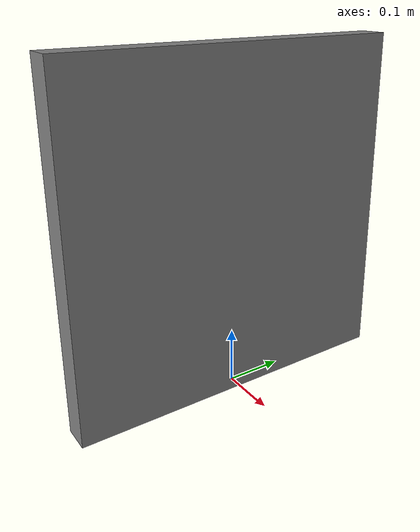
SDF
<?xml version="1.0"?>
<sdf version='1.6'>
<model name="wall">
  <link name="base_link">
    <visual name='wall_visual'>
      <pose frame=''>0 0 0.3 0 0 0</pose>
      <geometry>
        <box>
          <size>0.05 0.6 0.6</size>
        </box>
      </geometry>
      <material>
        <diffuse>0.5 0.5 0.5 1</diffuse>
      </material>
    </visual>

    <collision name='wall_collision'>
      <pose frame=''>0 0 0.3 0 0 0</pose>
      <geometry>
        <box>
          <size>0.049 0.599 0.599</size>
        </box>
      </geometry>
    </collision>

   </link>
</model>
</sdf>
